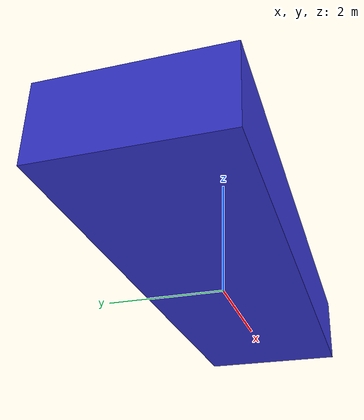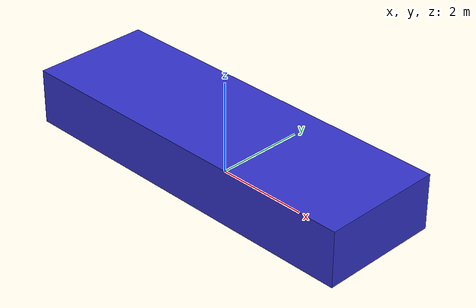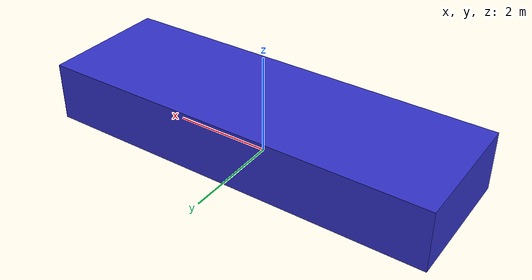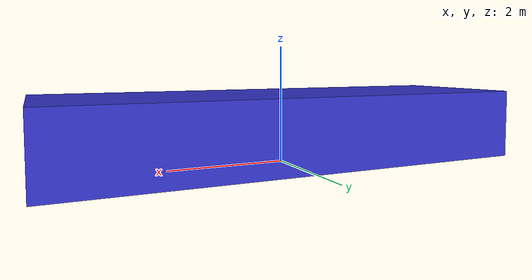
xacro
<!-- 底盘 -->
<robot xmlns:xacro="http://www.ros.org/wiki/xacro" name="obs_car">
    <!-- 颜色 -->
    <material name="blue">
        <color rgba="0.2 0.2 0.8 0.9"/>
    </material>

    <!-- 根坐标：基于哪个坐标计算的 -->
    <link name="map"/>

    <!-- 障碍车生成函数, 参数: id号, 长宽高-->
    <xacro:macro name="create_obs_car" params="id car_length car_width car_height color">
        <!-- 底盘在map的投影点 -->
        <link name="base_footprint_obs${id}"/>

        <!-- 底盘 -->
        <link name="base_link_obs${id}">
            <visual>
                <geometry>
                    <box size="${car_length} ${car_width} ${car_height}"/>
                </geometry>
                <material name="${color}"/>
            </visual>
        </link>

        <!-- 投影点关联到地图 -->
        <joint name="footprint${id}_to_map" type="fixed">
            <parent link="map"/>
            <child link="base_footprint_obs${id}"/>
        </joint>

        <!-- 底盘关联到投影点 -->
        <joint name="base_to_footprint${id}" type="fixed">
            <parent link="base_footprint_obs${id}"/>
            <child link="base_link_obs${id}"/>
            <!-- 中心点向上提高一半的车身高度：如果不提升，就会有一半的车嵌入到了地下，显然不符合常理 -->
            <origin xyz="0.0 0.0 ${car_height / 2.0}"/>
        </joint>
    </xacro:macro>

    <!-- 调用函数 -->            <!-- 创建三个大小相同的障碍物：静态场景用 -->

                                <!-- 创建三个尺寸不同的障碍物：动态场景用 -->
    <xacro:create_obs_car id="1" car_length="8.0" car_width="2.6" car_height="1.2" color="blue"/>
</robot>
